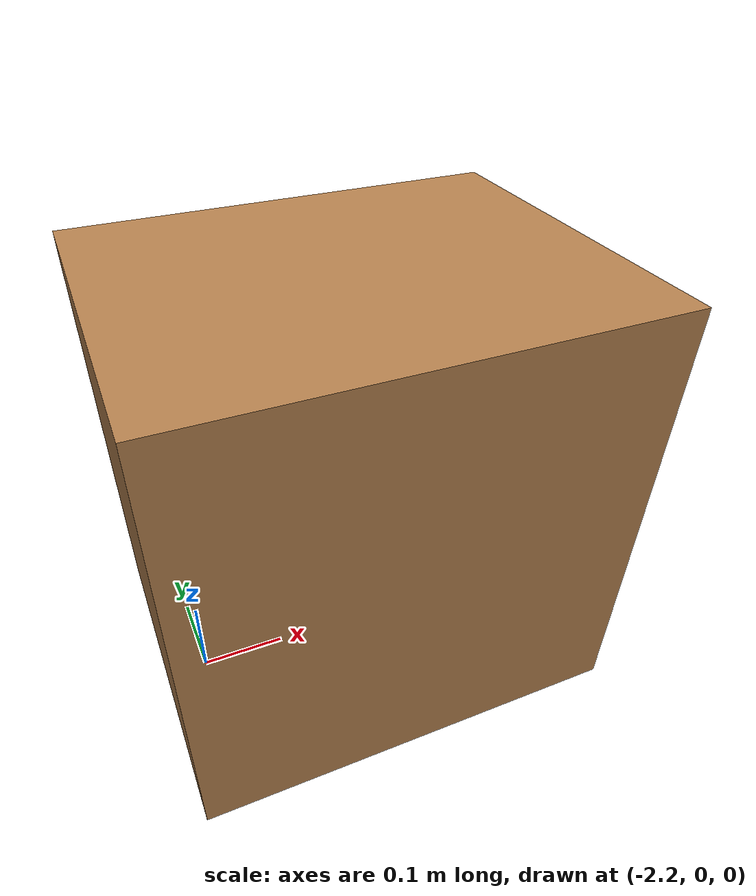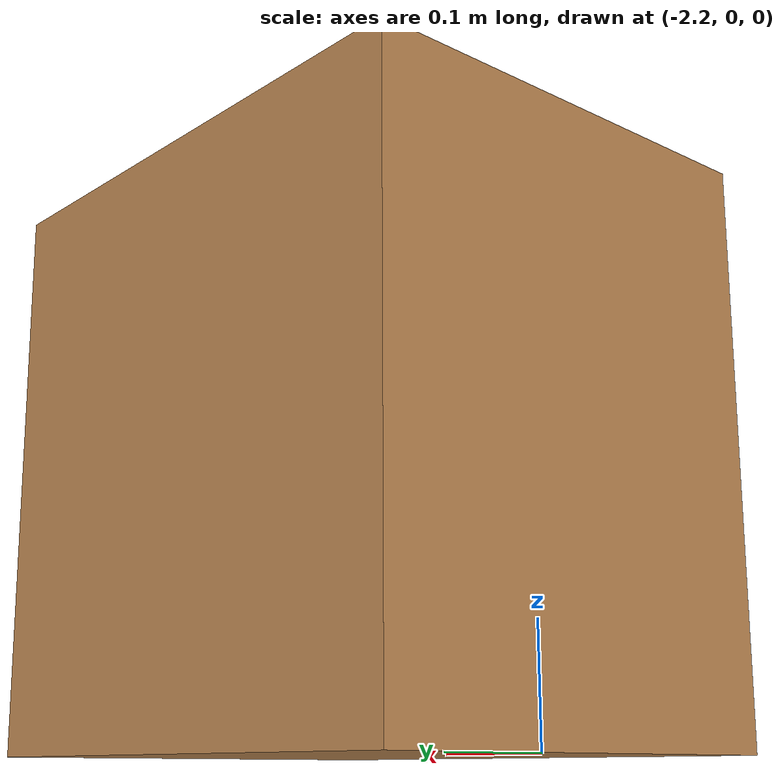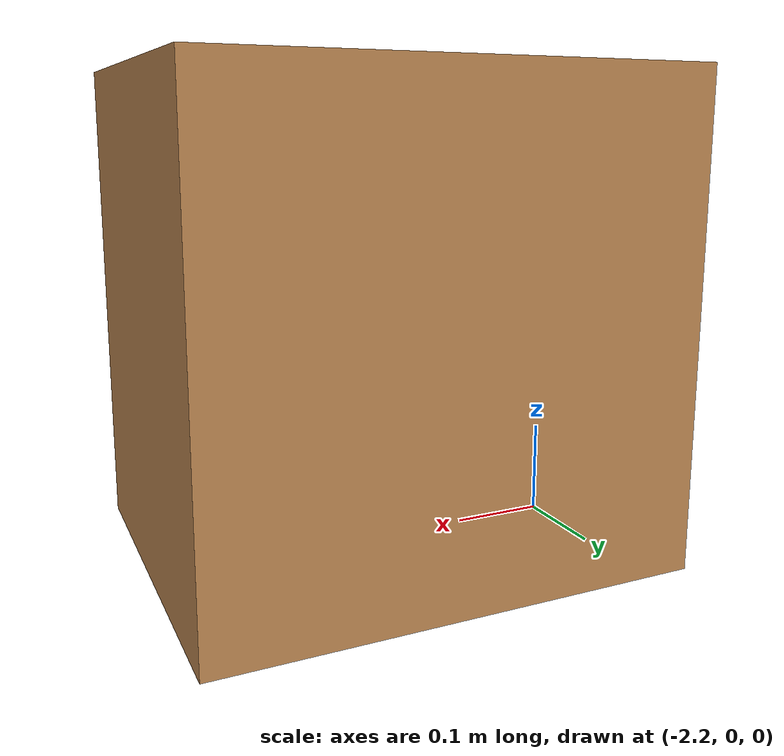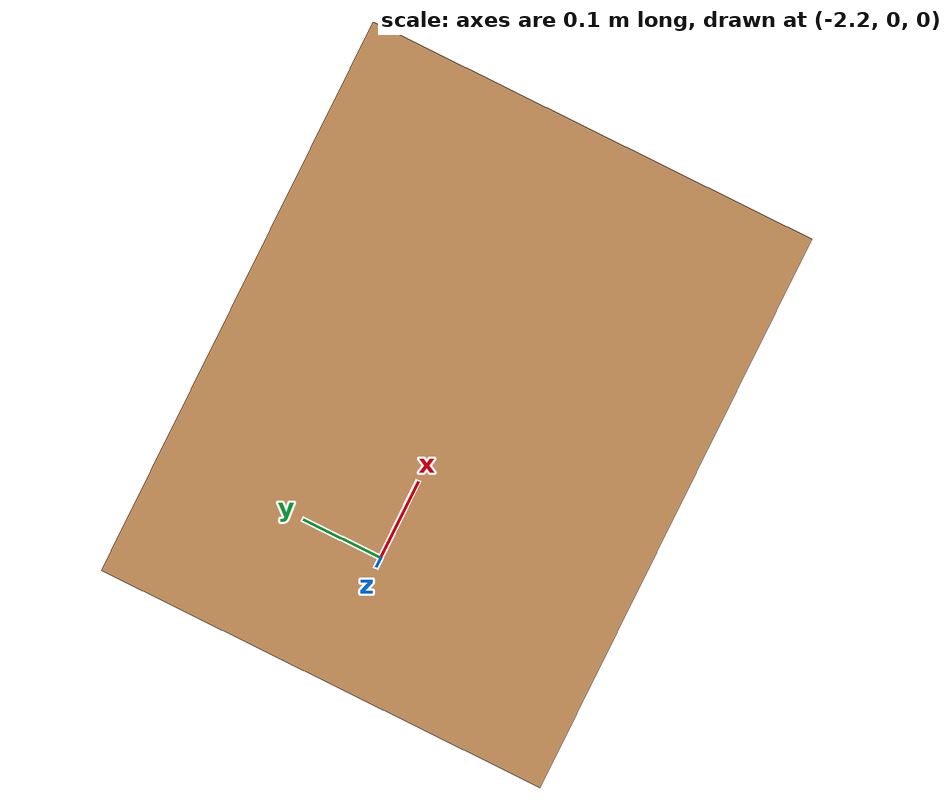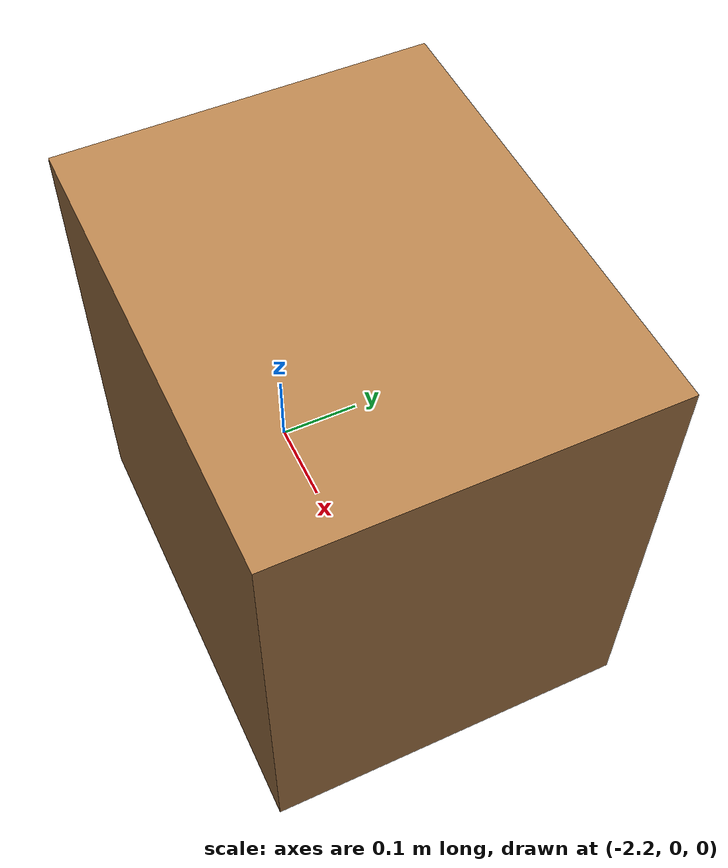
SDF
<sdf version='1.6'>
  <model name='obstacle_horizontal'>
    <static>1</static>
    <link name='second_box'>
      <collision name='collision'>
        <pose>-2.0 0.0 0.25 0 0 0</pose>
        <geometry>
          <box>
            <size>0.5 0.4 0.5</size>
          </box>
        </geometry>
        <max_contacts>10</max_contacts>
        <surface>
          <contact>
            <ode/>
          </contact>
          <bounce/>
          <friction>
            <torsional>
              <ode/>
            </torsional>
            <ode/>
          </friction>
        </surface>
      </collision>

      <visual name='visual'>
        <pose>-2.0 0.0 0.25 0 0 0</pose>
        <geometry>
          <box>
            <size>0.5 0.4 0.5</size>
          </box>
        </geometry>
        <material>
          <script>
            <uri>file://media/materials/scripts/gazebo.material</uri>
            <name>Gazebo/Wood</name>
          </script>
          <ambient>1 1 1 1</ambient>
        </material>
      </visual>
    </link>

    <plugin name="obstacle_1" filename="libobstacle_1.so"/>
    <allow_auto_disable>1</allow_auto_disable>
  </model>
</sdf>
